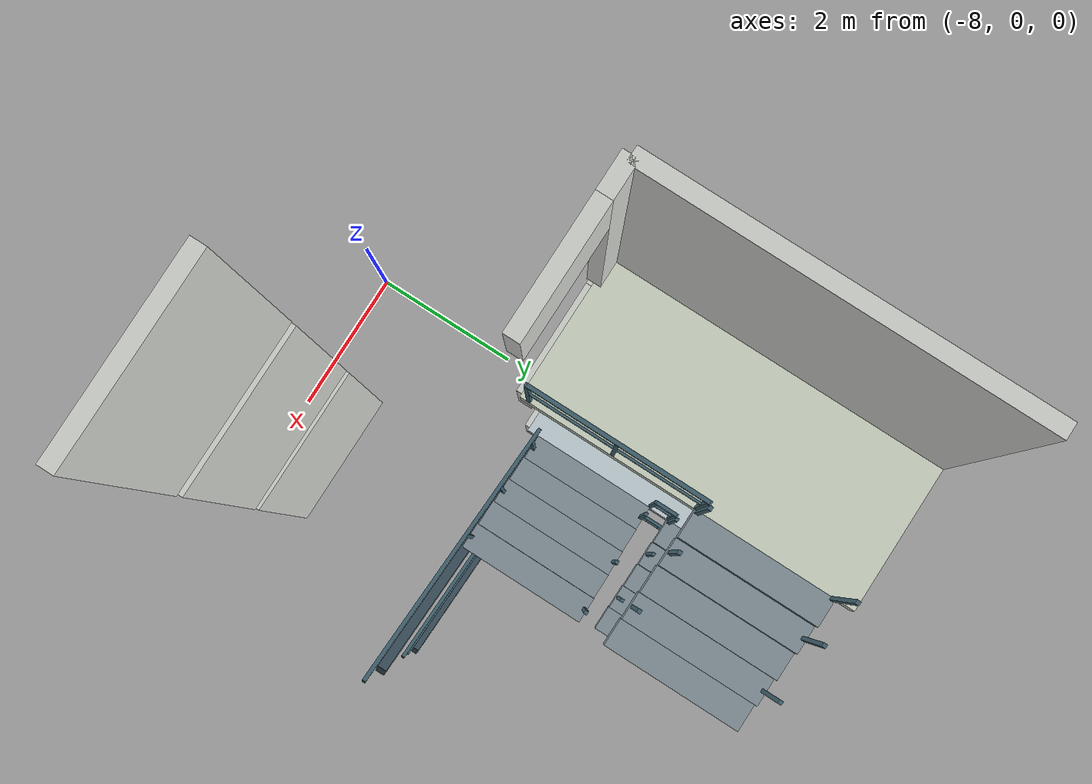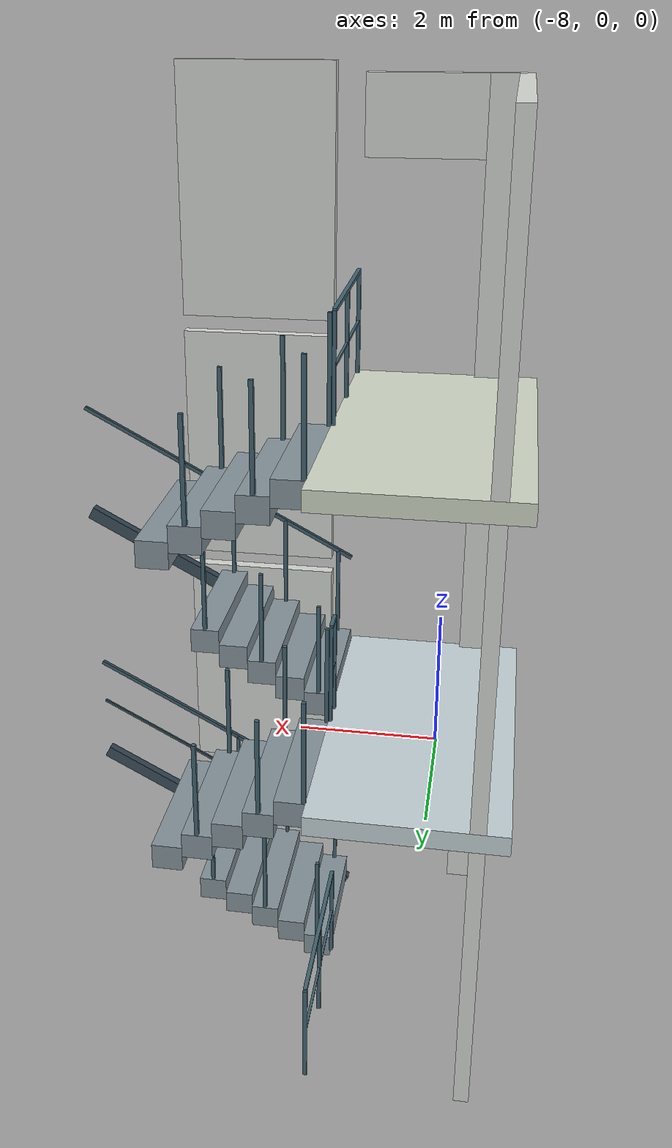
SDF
<sdf version="1.6">
 <world name="three_floor">
  <model name="f1_wall_023">
   <static>true</static>
   <pose>-5.6 0.8 1.5 0 0 0</pose>
   <link name="f1_wall_023_link">
    <collision name="f1_wall_023_collision"><geometry><box><size>1.9 0.15 3</size></box></geometry></collision>
    <visual name="f1_wall_023_visual">
     <geometry><box><size>1.9 0.15 3</size></box></geometry>
     <material><ambient>.84 .85 .83 1</ambient><diffuse>.84 .85 .83 1</diffuse></material>
    </visual>
   </link>
  </model>
  <model name="f1_wall_028">
   <static>true</static>
   <pose>-8.7 4.8 1.5 0 0 0</pose>
   <link name="f1_wall_028_link">
    <collision name="f1_wall_028_collision"><geometry><box><size>0.15 3.6 3</size></box></geometry></collision>
    <visual name="f1_wall_028_visual">
     <geometry><box><size>0.15 3.6 3</size></box></geometry>
     <material><ambient>.84 .85 .83 1</ambient><diffuse>.84 .85 .83 1</diffuse></material>
    </visual>
   </link>
  </model>
  <model name="f1_wall_031">
   <static>true</static>
   <pose>-8.525 3 1.5 0 0 0</pose>
   <link name="f1_wall_031_link">
    <collision name="f1_wall_031_collision"><geometry><box><size>0.35 0.15 3</size></box></geometry></collision>
    <visual name="f1_wall_031_visual">
     <geometry><box><size>0.35 0.15 3</size></box></geometry>
     <material><ambient>.84 .85 .83 1</ambient><diffuse>.84 .85 .83 1</diffuse></material>
    </visual>
   </link>
  </model>
  <model name="f1_lintel_stair">
   <static>true</static>
   <pose>-7.75 3 2.6 0 0 0</pose>
   <link name="f1_lintel_stair_link">
    <collision name="f1_lintel_stair_collision">
     <geometry><box><size>1.2 0.15 0.8</size></box></geometry>
    </collision>
    <visual name="f1_lintel_stair_visual">
     <geometry><box><size>1.2 0.15 0.8</size></box></geometry>
     <material><ambient>.84 .85 .83 1</ambient><diffuse>.84 .85 .83 1</diffuse></material>
    </visual>
   </link>
  </model>
  <model name="f2_slab_02">
   <static>true</static>
   <pose>-8.05 4.8 3.1 0 0 0</pose>
   <link name="f2_slab_02_link">
    <collision name="f2_slab_02_collision"><geometry><box><size>1.9 3.6 0.2</size></box></geometry></collision>
    <visual name="f2_slab_02_visual">
     <geometry><box><size>1.9 3.6 0.2</size></box></geometry>
     <material><ambient>0.77 0.83 0.85 1</ambient><diffuse>0.77 0.83 0.85 1</diffuse></material>
    </visual>
   </link>
  </model>
  <model name="f2_wall_023">
   <static>true</static>
   <pose>-5.6 0.8 4.7 0 0 0</pose>
   <link name="f2_wall_023_link">
    <collision name="f2_wall_023_collision"><geometry><box><size>1.9 0.15 3</size></box></geometry></collision>
    <visual name="f2_wall_023_visual">
     <geometry><box><size>1.9 0.15 3</size></box></geometry>
     <material><ambient>.84 .85 .83 1</ambient><diffuse>.84 .85 .83 1</diffuse></material>
    </visual>
   </link>
  </model>
  <model name="f2_wall_028">
   <static>true</static>
   <pose>-8.7 4.8 4.7 0 0 0</pose>
   <link name="f2_wall_028_link">
    <collision name="f2_wall_028_collision"><geometry><box><size>0.15 3.6 3</size></box></geometry></collision>
    <visual name="f2_wall_028_visual">
     <geometry><box><size>0.15 3.6 3</size></box></geometry>
     <material><ambient>.84 .85 .83 1</ambient><diffuse>.84 .85 .83 1</diffuse></material>
    </visual>
   </link>
  </model>
  <model name="f2_wall_031">
   <static>true</static>
   <pose>-8.525 3 4.7 0 0 0</pose>
   <link name="f2_wall_031_link">
    <collision name="f2_wall_031_collision"><geometry><box><size>0.35 0.15 3</size></box></geometry></collision>
    <visual name="f2_wall_031_visual">
     <geometry><box><size>0.35 0.15 3</size></box></geometry>
     <material><ambient>.84 .85 .83 1</ambient><diffuse>.84 .85 .83 1</diffuse></material>
    </visual>
   </link>
  </model>
  <model name="f2_lintel_stair">
   <static>true</static>
   <pose>-7.75 3 5.8 0 0 0</pose>
   <link name="f2_lintel_stair_link">
    <collision name="f2_lintel_stair_collision">
     <geometry><box><size>1.2 0.15 0.8</size></box></geometry>
    </collision>
    <visual name="f2_lintel_stair_visual">
     <geometry><box><size>1.2 0.15 0.8</size></box></geometry>
     <material><ambient>.84 .85 .83 1</ambient><diffuse>.84 .85 .83 1</diffuse></material>
    </visual>
   </link>
  </model>
  <model name="f3_slab_02">
   <static>true</static>
   <pose>-8.05 4.8 6.3 0 0 0</pose>
   <link name="f3_slab_02_link">
    <collision name="f3_slab_02_collision"><geometry><box><size>1.9 3.6 0.2</size></box></geometry></collision>
    <visual name="f3_slab_02_visual">
     <geometry><box><size>1.9 3.6 0.2</size></box></geometry>
     <material><ambient>0.82 0.85 0.78 1</ambient><diffuse>0.82 0.85 0.78 1</diffuse></material>
    </visual>
   </link>
  </model>
  <model name="f3_wall_023">
   <static>true</static>
   <pose>-5.6 0.8 7.9 0 0 0</pose>
   <link name="f3_wall_023_link">
    <collision name="f3_wall_023_collision"><geometry><box><size>1.9 0.15 3</size></box></geometry></collision>
    <visual name="f3_wall_023_visual">
     <geometry><box><size>1.9 0.15 3</size></box></geometry>
     <material><ambient>.84 .85 .83 1</ambient><diffuse>.84 .85 .83 1</diffuse></material>
    </visual>
   </link>
  </model>
  <model name="f3_wall_028">
   <static>true</static>
   <pose>-8.7 4.8 7.9 0 0 0</pose>
   <link name="f3_wall_028_link">
    <collision name="f3_wall_028_collision"><geometry><box><size>0.15 3.6 3</size></box></geometry></collision>
    <visual name="f3_wall_028_visual">
     <geometry><box><size>0.15 3.6 3</size></box></geometry>
     <material><ambient>.84 .85 .83 1</ambient><diffuse>.84 .85 .83 1</diffuse></material>
    </visual>
   </link>
  </model>
  <model name="f3_wall_031">
   <static>true</static>
   <pose>-8.525 3 7.9 0 0 0</pose>
   <link name="f3_wall_031_link">
    <collision name="f3_wall_031_collision"><geometry><box><size>0.35 0.15 3</size></box></geometry></collision>
    <visual name="f3_wall_031_visual">
     <geometry><box><size>0.35 0.15 3</size></box></geometry>
     <material><ambient>.84 .85 .83 1</ambient><diffuse>.84 .85 .83 1</diffuse></material>
    </visual>
   </link>
  </model>
  <model name="f3_lintel_stair">
   <static>true</static>
   <pose>-7.75 3 9 0 0 0</pose>
   <link name="f3_lintel_stair_link">
    <collision name="f3_lintel_stair_collision">
     <geometry><box><size>1.2 0.15 0.8</size></box></geometry>
    </collision>
    <visual name="f3_lintel_stair_visual">
     <geometry><box><size>1.2 0.15 0.8</size></box></geometry>
     <material><ambient>.84 .85 .83 1</ambient><diffuse>.84 .85 .83 1</diffuse></material>
    </visual>
   </link>
  </model>
  <model name="f1_stair_south_tread_01">
   <static>true</static>
   <pose>-6.95 3.9 0.03 0 0 0</pose>
   <link name="f1_stair_south_tread_01_link">
    <collision name="f1_stair_south_tread_01_collision">
     <geometry><box><size>0.3 1.5 0.26</size></box></geometry>
     <surface><friction><ode><mu>1.0</mu><mu2>1.0</mu2></ode></friction></surface>
    </collision>
    <visual name="f1_stair_south_tread_01_visual">
     <geometry><box><size>0.3 1.5 0.26</size></box></geometry>
     <material>
      <ambient>0.52 0.58 0.61 1</ambient>
      <diffuse>0.52 0.58 0.61 1</diffuse>
      <specular>0.04 0.04 0.04 1</specular>
     </material>
    </visual>
   </link>
  </model>
  <model name="f1_stair_south_tread_02">
   <static>true</static>
   <pose>-6.65 3.9 0.19 0 0 0</pose>
   <link name="f1_stair_south_tread_02_link">
    <collision name="f1_stair_south_tread_02_collision">
     <geometry><box><size>0.3 1.5 0.26</size></box></geometry>
     <surface><friction><ode><mu>1.0</mu><mu2>1.0</mu2></ode></friction></surface>
    </collision>
    <visual name="f1_stair_south_tread_02_visual">
     <geometry><box><size>0.3 1.5 0.26</size></box></geometry>
     <material>
      <ambient>0.52 0.58 0.61 1</ambient>
      <diffuse>0.52 0.58 0.61 1</diffuse>
      <specular>0.04 0.04 0.04 1</specular>
     </material>
    </visual>
   </link>
  </model>
  <model name="f1_stair_south_tread_03">
   <static>true</static>
   <pose>-6.35 3.9 0.35 0 0 0</pose>
   <link name="f1_stair_south_tread_03_link">
    <collision name="f1_stair_south_tread_03_collision">
     <geometry><box><size>0.3 1.5 0.26</size></box></geometry>
     <surface><friction><ode><mu>1.0</mu><mu2>1.0</mu2></ode></friction></surface>
    </collision>
    <visual name="f1_stair_south_tread_03_visual">
     <geometry><box><size>0.3 1.5 0.26</size></box></geometry>
     <material>
      <ambient>0.52 0.58 0.61 1</ambient>
      <diffuse>0.52 0.58 0.61 1</diffuse>
      <specular>0.04 0.04 0.04 1</specular>
     </material>
    </visual>
   </link>
  </model>
  <model name="f1_stair_south_tread_04">
   <static>true</static>
   <pose>-6.05 3.9 0.51 0 0 0</pose>
   <link name="f1_stair_south_tread_04_link">
    <collision name="f1_stair_south_tread_04_collision">
     <geometry><box><size>0.3 1.5 0.26</size></box></geometry>
     <surface><friction><ode><mu>1.0</mu><mu2>1.0</mu2></ode></friction></surface>
    </collision>
    <visual name="f1_stair_south_tread_04_visual">
     <geometry><box><size>0.3 1.5 0.26</size></box></geometry>
     <material>
      <ambient>0.52 0.58 0.61 1</ambient>
      <diffuse>0.52 0.58 0.61 1</diffuse>
      <specular>0.04 0.04 0.04 1</specular>
     </material>
    </visual>
   </link>
  </model>
  <model name="f1_stair_south_tread_05">
   <static>true</static>
   <pose>-5.75 3.9 0.67 0 0 0</pose>
   <link name="f1_stair_south_tread_05_link">
    <collision name="f1_stair_south_tread_05_collision">
     <geometry><box><size>0.3 1.5 0.26</size></box></geometry>
     <surface><friction><ode><mu>1.0</mu><mu2>1.0</mu2></ode></friction></surface>
    </collision>
    <visual name="f1_stair_south_tread_05_visual">
     <geometry><box><size>0.3 1.5 0.26</size></box></geometry>
     <material>
      <ambient>0.52 0.58 0.61 1</ambient>
      <diffuse>0.52 0.58 0.61 1</diffuse>
      <specular>0.04 0.04 0.04 1</specular>
     </material>
    </visual>
   </link>
  </model>
  <model name="f1_stair_south_outer_stringer">
   <static>true</static>
   <pose>-5.6 3.18 0.64 0 -0.489957326 0</pose>
   <link name="f1_stair_south_outer_stringer_link">
    <collision name="f1_stair_south_outer_stringer_collision">
     <geometry><box><size>3.4 0.1 0.14</size></box></geometry>
    </collision>
    <visual name="f1_stair_south_outer_stringer_visual">
     <geometry><box><size>3.4 0.1 0.14</size></box></geometry>
     <material>
      <ambient>0.23 0.31 0.36 1</ambient>
      <diffuse>0.23 0.31 0.36 1</diffuse>
      <specular>0.04 0.04 0.04 1</specular>
     </material>
    </visual>
   </link>
  </model>
  <model name="f1_stair_south_outer_handrail">
   <static>true</static>
   <pose>-5.6 3.18 1.88 0 -0.489957326 0</pose>
   <link name="f1_stair_south_outer_handrail_link">
    <collision name="f1_stair_south_outer_handrail_collision">
     <geometry><box><size>3.4 0.04 0.04</size></box></geometry>
    </collision>
    <visual name="f1_stair_south_outer_handrail_visual">
     <geometry><box><size>3.4 0.04 0.04</size></box></geometry>
     <material>
      <ambient>0.26 0.39 0.44 1</ambient>
      <diffuse>0.26 0.39 0.44 1</diffuse>
      <specular>0.04 0.04 0.04 1</specular>
     </material>
    </visual>
   </link>
  </model>
  <model name="f1_stair_south_outer_midrail">
   <static>true</static>
   <pose>-5.6 3.18 1.35 0 -0.489957326 0</pose>
   <link name="f1_stair_south_outer_midrail_link">
    <collision name="f1_stair_south_outer_midrail_collision">
     <geometry><box><size>3.4 0.025 0.025</size></box></geometry>
    </collision>
    <visual name="f1_stair_south_outer_midrail_visual">
     <geometry><box><size>3.4 0.025 0.025</size></box></geometry>
     <material>
      <ambient>0.26 0.39 0.44 1</ambient>
      <diffuse>0.26 0.39 0.44 1</diffuse>
      <specular>0.04 0.04 0.04 1</specular>
     </material>
    </visual>
   </link>
  </model>
  <model name="f1_stair_south_outer_post_00">
   <static>true</static>
   <pose>-6.95 3.18 0.66 0 0 0</pose>
   <link name="f1_stair_south_outer_post_00_link">
    <collision name="f1_stair_south_outer_post_00_collision">
     <geometry><box><size>0.04 0.04 1</size></box></geometry>
    </collision>
    <visual name="f1_stair_south_outer_post_00_visual">
     <geometry><box><size>0.04 0.04 1</size></box></geometry>
     <material>
      <ambient>0.26 0.39 0.44 1</ambient>
      <diffuse>0.26 0.39 0.44 1</diffuse>
      <specular>0.04 0.04 0.04 1</specular>
     </material>
    </visual>
   </link>
  </model>
  <model name="f1_stair_south_outer_post_01">
   <static>true</static>
   <pose>-6.35 3.18 0.98 0 0 0</pose>
   <link name="f1_stair_south_outer_post_01_link">
    <collision name="f1_stair_south_outer_post_01_collision">
     <geometry><box><size>0.04 0.04 1</size></box></geometry>
    </collision>
    <visual name="f1_stair_south_outer_post_01_visual">
     <geometry><box><size>0.04 0.04 1</size></box></geometry>
     <material>
      <ambient>0.26 0.39 0.44 1</ambient>
      <diffuse>0.26 0.39 0.44 1</diffuse>
      <specular>0.04 0.04 0.04 1</specular>
     </material>
    </visual>
   </link>
  </model>
  <model name="f1_stair_south_outer_post_02">
   <static>true</static>
   <pose>-5.75 3.18 1.3 0 0 0</pose>
   <link name="f1_stair_south_outer_post_02_link">
    <collision name="f1_stair_south_outer_post_02_collision">
     <geometry><box><size>0.04 0.04 1</size></box></geometry>
    </collision>
    <visual name="f1_stair_south_outer_post_02_visual">
     <geometry><box><size>0.04 0.04 1</size></box></geometry>
     <material>
      <ambient>0.26 0.39 0.44 1</ambient>
      <diffuse>0.26 0.39 0.44 1</diffuse>
      <specular>0.04 0.04 0.04 1</specular>
     </material>
    </visual>
   </link>
  </model>
  <model name="f1_stair_south_inner_post_00">
   <static>true</static>
   <pose>-6.95 4.62 0.66 0 0 0</pose>
   <link name="f1_stair_south_inner_post_00_link">
    <collision name="f1_stair_south_inner_post_00_collision">
     <geometry><box><size>0.04 0.04 1</size></box></geometry>
    </collision>
    <visual name="f1_stair_south_inner_post_00_visual">
     <geometry><box><size>0.04 0.04 1</size></box></geometry>
     <material>
      <ambient>0.26 0.39 0.44 1</ambient>
      <diffuse>0.26 0.39 0.44 1</diffuse>
      <specular>0.04 0.04 0.04 1</specular>
     </material>
    </visual>
   </link>
  </model>
  <model name="f1_stair_south_inner_post_01">
   <static>true</static>
   <pose>-6.35 4.62 0.98 0 0 0</pose>
   <link name="f1_stair_south_inner_post_01_link">
    <collision name="f1_stair_south_inner_post_01_collision">
     <geometry><box><size>0.04 0.04 1</size></box></geometry>
    </collision>
    <visual name="f1_stair_south_inner_post_01_visual">
     <geometry><box><size>0.04 0.04 1</size></box></geometry>
     <material>
      <ambient>0.26 0.39 0.44 1</ambient>
      <diffuse>0.26 0.39 0.44 1</diffuse>
      <specular>0.04 0.04 0.04 1</specular>
     </material>
    </visual>
   </link>
  </model>
  <model name="f1_stair_south_inner_post_02">
   <static>true</static>
   <pose>-5.75 4.62 1.3 0 0 0</pose>
   <link name="f1_stair_south_inner_post_02_link">
    <collision name="f1_stair_south_inner_post_02_collision">
     <geometry><box><size>0.04 0.04 1</size></box></geometry>
    </collision>
    <visual name="f1_stair_south_inner_post_02_visual">
     <geometry><box><size>0.04 0.04 1</size></box></geometry>
     <material>
      <ambient>0.26 0.39 0.44 1</ambient>
      <diffuse>0.26 0.39 0.44 1</diffuse>
      <specular>0.04 0.04 0.04 1</specular>
     </material>
    </visual>
   </link>
  </model>
  <model name="f1_stair_north_tread_06">
   <static>true</static>
   <pose>-5.75 5.65 2.43 0 0 0</pose>
   <link name="f1_stair_north_tread_06_link">
    <collision name="f1_stair_north_tread_06_collision">
     <geometry><box><size>0.3 1.5 0.26</size></box></geometry>
     <surface><friction><ode><mu>1.0</mu><mu2>1.0</mu2></ode></friction></surface>
    </collision>
    <visual name="f1_stair_north_tread_06_visual">
     <geometry><box><size>0.3 1.5 0.26</size></box></geometry>
     <material>
      <ambient>0.52 0.58 0.61 1</ambient>
      <diffuse>0.52 0.58 0.61 1</diffuse>
      <specular>0.04 0.04 0.04 1</specular>
     </material>
    </visual>
   </link>
  </model>
  <model name="f1_stair_north_tread_07">
   <static>true</static>
   <pose>-6.05 5.65 2.59 0 0 0</pose>
   <link name="f1_stair_north_tread_07_link">
    <collision name="f1_stair_north_tread_07_collision">
     <geometry><box><size>0.3 1.5 0.26</size></box></geometry>
     <surface><friction><ode><mu>1.0</mu><mu2>1.0</mu2></ode></friction></surface>
    </collision>
    <visual name="f1_stair_north_tread_07_visual">
     <geometry><box><size>0.3 1.5 0.26</size></box></geometry>
     <material>
      <ambient>0.52 0.58 0.61 1</ambient>
      <diffuse>0.52 0.58 0.61 1</diffuse>
      <specular>0.04 0.04 0.04 1</specular>
     </material>
    </visual>
   </link>
  </model>
  <model name="f1_stair_north_tread_08">
   <static>true</static>
   <pose>-6.35 5.65 2.75 0 0 0</pose>
   <link name="f1_stair_north_tread_08_link">
    <collision name="f1_stair_north_tread_08_collision">
     <geometry><box><size>0.3 1.5 0.26</size></box></geometry>
     <surface><friction><ode><mu>1.0</mu><mu2>1.0</mu2></ode></friction></surface>
    </collision>
    <visual name="f1_stair_north_tread_08_visual">
     <geometry><box><size>0.3 1.5 0.26</size></box></geometry>
     <material>
      <ambient>0.52 0.58 0.61 1</ambient>
      <diffuse>0.52 0.58 0.61 1</diffuse>
      <specular>0.04 0.04 0.04 1</specular>
     </material>
    </visual>
   </link>
  </model>
  <model name="f1_stair_north_tread_09">
   <static>true</static>
   <pose>-6.65 5.65 2.91 0 0 0</pose>
   <link name="f1_stair_north_tread_09_link">
    <collision name="f1_stair_north_tread_09_collision">
     <geometry><box><size>0.3 1.5 0.26</size></box></geometry>
     <surface><friction><ode><mu>1.0</mu><mu2>1.0</mu2></ode></friction></surface>
    </collision>
    <visual name="f1_stair_north_tread_09_visual">
     <geometry><box><size>0.3 1.5 0.26</size></box></geometry>
     <material>
      <ambient>0.52 0.58 0.61 1</ambient>
      <diffuse>0.52 0.58 0.61 1</diffuse>
      <specular>0.04 0.04 0.04 1</specular>
     </material>
    </visual>
   </link>
  </model>
  <model name="f1_stair_north_tread_10">
   <static>true</static>
   <pose>-6.95 5.65 3.07 0 0 0</pose>
   <link name="f1_stair_north_tread_10_link">
    <collision name="f1_stair_north_tread_10_collision">
     <geometry><box><size>0.3 1.5 0.26</size></box></geometry>
     <surface><friction><ode><mu>1.0</mu><mu2>1.0</mu2></ode></friction></surface>
    </collision>
    <visual name="f1_stair_north_tread_10_visual">
     <geometry><box><size>0.3 1.5 0.26</size></box></geometry>
     <material>
      <ambient>0.52 0.58 0.61 1</ambient>
      <diffuse>0.52 0.58 0.61 1</diffuse>
      <specular>0.04 0.04 0.04 1</specular>
     </material>
    </visual>
   </link>
  </model>
  <model name="f1_stair_north_outer_post_03">
   <static>true</static>
   <pose>-6.05 6.37 3.22 0 0 0</pose>
   <link name="f1_stair_north_outer_post_03_link">
    <collision name="f1_stair_north_outer_post_03_collision">
     <geometry><box><size>0.04 0.04 1</size></box></geometry>
    </collision>
    <visual name="f1_stair_north_outer_post_03_visual">
     <geometry><box><size>0.04 0.04 1</size></box></geometry>
     <material>
      <ambient>0.26 0.39 0.44 1</ambient>
      <diffuse>0.26 0.39 0.44 1</diffuse>
      <specular>0.04 0.04 0.04 1</specular>
     </material>
    </visual>
   </link>
  </model>
  <model name="f1_stair_north_outer_post_04">
   <static>true</static>
   <pose>-6.65 6.37 3.54 0 0 0</pose>
   <link name="f1_stair_north_outer_post_04_link">
    <collision name="f1_stair_north_outer_post_04_collision">
     <geometry><box><size>0.04 0.04 1</size></box></geometry>
    </collision>
    <visual name="f1_stair_north_outer_post_04_visual">
     <geometry><box><size>0.04 0.04 1</size></box></geometry>
     <material>
      <ambient>0.26 0.39 0.44 1</ambient>
      <diffuse>0.26 0.39 0.44 1</diffuse>
      <specular>0.04 0.04 0.04 1</specular>
     </material>
    </visual>
   </link>
  </model>
  <model name="f1_stair_north_outer_post_05">
   <static>true</static>
   <pose>-7.085 6.37 3.736 0 0 0</pose>
   <link name="f1_stair_north_outer_post_05_link">
    <collision name="f1_stair_north_outer_post_05_collision">
     <geometry><box><size>0.04 0.04 1.072</size></box></geometry>
    </collision>
    <visual name="f1_stair_north_outer_post_05_visual">
     <geometry><box><size>0.04 0.04 1.072</size></box></geometry>
     <material>
      <ambient>0.26 0.39 0.44 1</ambient>
      <diffuse>0.26 0.39 0.44 1</diffuse>
      <specular>0.04 0.04 0.04 1</specular>
     </material>
    </visual>
   </link>
  </model>
  <model name="f1_stair_north_inner_post_03">
   <static>true</static>
   <pose>-6.05 4.93 3.22 0 0 0</pose>
   <link name="f1_stair_north_inner_post_03_link">
    <collision name="f1_stair_north_inner_post_03_collision">
     <geometry><box><size>0.04 0.04 1</size></box></geometry>
    </collision>
    <visual name="f1_stair_north_inner_post_03_visual">
     <geometry><box><size>0.04 0.04 1</size></box></geometry>
     <material>
      <ambient>0.26 0.39 0.44 1</ambient>
      <diffuse>0.26 0.39 0.44 1</diffuse>
      <specular>0.04 0.04 0.04 1</specular>
     </material>
    </visual>
   </link>
  </model>
  <model name="f1_stair_north_inner_post_04">
   <static>true</static>
   <pose>-6.65 4.93 3.54 0 0 0</pose>
   <link name="f1_stair_north_inner_post_04_link">
    <collision name="f1_stair_north_inner_post_04_collision">
     <geometry><box><size>0.04 0.04 1</size></box></geometry>
    </collision>
    <visual name="f1_stair_north_inner_post_04_visual">
     <geometry><box><size>0.04 0.04 1</size></box></geometry>
     <material>
      <ambient>0.26 0.39 0.44 1</ambient>
      <diffuse>0.26 0.39 0.44 1</diffuse>
      <specular>0.04 0.04 0.04 1</specular>
     </material>
    </visual>
   </link>
  </model>
  <model name="f1_stair_north_inner_post_05">
   <static>true</static>
   <pose>-7.085 4.93 3.736 0 0 0</pose>
   <link name="f1_stair_north_inner_post_05_link">
    <collision name="f1_stair_north_inner_post_05_collision">
     <geometry><box><size>0.04 0.04 1.072</size></box></geometry>
    </collision>
    <visual name="f1_stair_north_inner_post_05_visual">
     <geometry><box><size>0.04 0.04 1.072</size></box></geometry>
     <material>
      <ambient>0.26 0.39 0.44 1</ambient>
      <diffuse>0.26 0.39 0.44 1</diffuse>
      <specular>0.04 0.04 0.04 1</specular>
     </material>
    </visual>
   </link>
  </model>
  <model name="f2_stair_south_tread_01">
   <static>true</static>
   <pose>-6.95 3.9 3.23 0 0 0</pose>
   <link name="f2_stair_south_tread_01_link">
    <collision name="f2_stair_south_tread_01_collision">
     <geometry><box><size>0.3 1.5 0.26</size></box></geometry>
     <surface><friction><ode><mu>1.0</mu><mu2>1.0</mu2></ode></friction></surface>
    </collision>
    <visual name="f2_stair_south_tread_01_visual">
     <geometry><box><size>0.3 1.5 0.26</size></box></geometry>
     <material>
      <ambient>0.52 0.58 0.61 1</ambient>
      <diffuse>0.52 0.58 0.61 1</diffuse>
      <specular>0.04 0.04 0.04 1</specular>
     </material>
    </visual>
   </link>
  </model>
  <model name="f2_stair_south_tread_02">
   <static>true</static>
   <pose>-6.65 3.9 3.39 0 0 0</pose>
   <link name="f2_stair_south_tread_02_link">
    <collision name="f2_stair_south_tread_02_collision">
     <geometry><box><size>0.3 1.5 0.26</size></box></geometry>
     <surface><friction><ode><mu>1.0</mu><mu2>1.0</mu2></ode></friction></surface>
    </collision>
    <visual name="f2_stair_south_tread_02_visual">
     <geometry><box><size>0.3 1.5 0.26</size></box></geometry>
     <material>
      <ambient>0.52 0.58 0.61 1</ambient>
      <diffuse>0.52 0.58 0.61 1</diffuse>
      <specular>0.04 0.04 0.04 1</specular>
     </material>
    </visual>
   </link>
  </model>
  <model name="f2_stair_south_tread_03">
   <static>true</static>
   <pose>-6.35 3.9 3.55 0 0 0</pose>
   <link name="f2_stair_south_tread_03_link">
    <collision name="f2_stair_south_tread_03_collision">
     <geometry><box><size>0.3 1.5 0.26</size></box></geometry>
     <surface><friction><ode><mu>1.0</mu><mu2>1.0</mu2></ode></friction></surface>
    </collision>
    <visual name="f2_stair_south_tread_03_visual">
     <geometry><box><size>0.3 1.5 0.26</size></box></geometry>
     <material>
      <ambient>0.52 0.58 0.61 1</ambient>
      <diffuse>0.52 0.58 0.61 1</diffuse>
      <specular>0.04 0.04 0.04 1</specular>
     </material>
    </visual>
   </link>
  </model>
  <model name="f2_stair_south_tread_04">
   <static>true</static>
   <pose>-6.05 3.9 3.71 0 0 0</pose>
   <link name="f2_stair_south_tread_04_link">
    <collision name="f2_stair_south_tread_04_collision">
     <geometry><box><size>0.3 1.5 0.26</size></box></geometry>
     <surface><friction><ode><mu>1.0</mu><mu2>1.0</mu2></ode></friction></surface>
    </collision>
    <visual name="f2_stair_south_tread_04_visual">
     <geometry><box><size>0.3 1.5 0.26</size></box></geometry>
     <material>
      <ambient>0.52 0.58 0.61 1</ambient>
      <diffuse>0.52 0.58 0.61 1</diffuse>
      <specular>0.04 0.04 0.04 1</specular>
     </material>
    </visual>
   </link>
  </model>
  <model name="f2_stair_south_tread_05">
   <static>true</static>
   <pose>-5.75 3.9 3.87 0 0 0</pose>
   <link name="f2_stair_south_tread_05_link">
    <collision name="f2_stair_south_tread_05_collision">
     <geometry><box><size>0.3 1.5 0.26</size></box></geometry>
     <surface><friction><ode><mu>1.0</mu><mu2>1.0</mu2></ode></friction></surface>
    </collision>
    <visual name="f2_stair_south_tread_05_visual">
     <geometry><box><size>0.3 1.5 0.26</size></box></geometry>
     <material>
      <ambient>0.52 0.58 0.61 1</ambient>
      <diffuse>0.52 0.58 0.61 1</diffuse>
      <specular>0.04 0.04 0.04 1</specular>
     </material>
    </visual>
   </link>
  </model>
  <model name="f2_stair_south_outer_stringer">
   <static>true</static>
   <pose>-5.6 3.18 3.84 0 -0.489957326 0</pose>
   <link name="f2_stair_south_outer_stringer_link">
    <collision name="f2_stair_south_outer_stringer_collision">
     <geometry><box><size>3.4 0.1 0.14</size></box></geometry>
    </collision>
    <visual name="f2_stair_south_outer_stringer_visual">
     <geometry><box><size>3.4 0.1 0.14</size></box></geometry>
     <material>
      <ambient>0.23 0.31 0.36 1</ambient>
      <diffuse>0.23 0.31 0.36 1</diffuse>
      <specular>0.04 0.04 0.04 1</specular>
     </material>
    </visual>
   </link>
  </model>
  <model name="f2_stair_south_outer_handrail">
   <static>true</static>
   <pose>-5.6 3.18 5.08 0 -0.489957326 0</pose>
   <link name="f2_stair_south_outer_handrail_link">
    <collision name="f2_stair_south_outer_handrail_collision">
     <geometry><box><size>3.4 0.04 0.04</size></box></geometry>
    </collision>
    <visual name="f2_stair_south_outer_handrail_visual">
     <geometry><box><size>3.4 0.04 0.04</size></box></geometry>
     <material>
      <ambient>0.26 0.39 0.44 1</ambient>
      <diffuse>0.26 0.39 0.44 1</diffuse>
      <specular>0.04 0.04 0.04 1</specular>
     </material>
    </visual>
   </link>
  </model>
  <model name="f2_stair_south_outer_post_00">
   <static>true</static>
   <pose>-6.95 3.18 3.86 0 0 0</pose>
   <link name="f2_stair_south_outer_post_00_link">
    <collision name="f2_stair_south_outer_post_00_collision">
     <geometry><box><size>0.04 0.04 1</size></box></geometry>
    </collision>
    <visual name="f2_stair_south_outer_post_00_visual">
     <geometry><box><size>0.04 0.04 1</size></box></geometry>
     <material>
      <ambient>0.26 0.39 0.44 1</ambient>
      <diffuse>0.26 0.39 0.44 1</diffuse>
      <specular>0.04 0.04 0.04 1</specular>
     </material>
    </visual>
   </link>
  </model>
  <model name="f2_stair_south_outer_post_01">
   <static>true</static>
   <pose>-6.35 3.18 4.18 0 0 0</pose>
   <link name="f2_stair_south_outer_post_01_link">
    <collision name="f2_stair_south_outer_post_01_collision">
     <geometry><box><size>0.04 0.04 1</size></box></geometry>
    </collision>
    <visual name="f2_stair_south_outer_post_01_visual">
     <geometry><box><size>0.04 0.04 1</size></box></geometry>
     <material>
      <ambient>0.26 0.39 0.44 1</ambient>
      <diffuse>0.26 0.39 0.44 1</diffuse>
      <specular>0.04 0.04 0.04 1</specular>
     </material>
    </visual>
   </link>
  </model>
  <model name="f2_stair_south_outer_post_02">
   <static>true</static>
   <pose>-5.75 3.18 4.5 0 0 0</pose>
   <link name="f2_stair_south_outer_post_02_link">
    <collision name="f2_stair_south_outer_post_02_collision">
     <geometry><box><size>0.04 0.04 1</size></box></geometry>
    </collision>
    <visual name="f2_stair_south_outer_post_02_visual">
     <geometry><box><size>0.04 0.04 1</size></box></geometry>
     <material>
      <ambient>0.26 0.39 0.44 1</ambient>
      <diffuse>0.26 0.39 0.44 1</diffuse>
      <specular>0.04 0.04 0.04 1</specular>
     </material>
    </visual>
   </link>
  </model>
  <model name="f2_stair_south_inner_post_00">
   <static>true</static>
   <pose>-6.95 4.62 3.86 0 0 0</pose>
   <link name="f2_stair_south_inner_post_00_link">
    <collision name="f2_stair_south_inner_post_00_collision">
     <geometry><box><size>0.04 0.04 1</size></box></geometry>
    </collision>
    <visual name="f2_stair_south_inner_post_00_visual">
     <geometry><box><size>0.04 0.04 1</size></box></geometry>
     <material>
      <ambient>0.26 0.39 0.44 1</ambient>
      <diffuse>0.26 0.39 0.44 1</diffuse>
      <specular>0.04 0.04 0.04 1</specular>
     </material>
    </visual>
   </link>
  </model>
  <model name="f2_stair_south_inner_post_01">
   <static>true</static>
   <pose>-6.35 4.62 4.18 0 0 0</pose>
   <link name="f2_stair_south_inner_post_01_link">
    <collision name="f2_stair_south_inner_post_01_collision">
     <geometry><box><size>0.04 0.04 1</size></box></geometry>
    </collision>
    <visual name="f2_stair_south_inner_post_01_visual">
     <geometry><box><size>0.04 0.04 1</size></box></geometry>
     <material>
      <ambient>0.26 0.39 0.44 1</ambient>
      <diffuse>0.26 0.39 0.44 1</diffuse>
      <specular>0.04 0.04 0.04 1</specular>
     </material>
    </visual>
   </link>
  </model>
  <model name="f2_stair_south_inner_post_02">
   <static>true</static>
   <pose>-5.75 4.62 4.5 0 0 0</pose>
   <link name="f2_stair_south_inner_post_02_link">
    <collision name="f2_stair_south_inner_post_02_collision">
     <geometry><box><size>0.04 0.04 1</size></box></geometry>
    </collision>
    <visual name="f2_stair_south_inner_post_02_visual">
     <geometry><box><size>0.04 0.04 1</size></box></geometry>
     <material>
      <ambient>0.26 0.39 0.44 1</ambient>
      <diffuse>0.26 0.39 0.44 1</diffuse>
      <specular>0.04 0.04 0.04 1</specular>
     </material>
    </visual>
   </link>
  </model>
  <model name="f2_stair_north_tread_06">
   <static>true</static>
   <pose>-5.75 5.65 5.63 0 0 0</pose>
   <link name="f2_stair_north_tread_06_link">
    <collision name="f2_stair_north_tread_06_collision">
     <geometry><box><size>0.3 1.5 0.26</size></box></geometry>
     <surface><friction><ode><mu>1.0</mu><mu2>1.0</mu2></ode></friction></surface>
    </collision>
    <visual name="f2_stair_north_tread_06_visual">
     <geometry><box><size>0.3 1.5 0.26</size></box></geometry>
     <material>
      <ambient>0.52 0.58 0.61 1</ambient>
      <diffuse>0.52 0.58 0.61 1</diffuse>
      <specular>0.04 0.04 0.04 1</specular>
     </material>
    </visual>
   </link>
  </model>
  <model name="f2_stair_north_tread_07">
   <static>true</static>
   <pose>-6.05 5.65 5.79 0 0 0</pose>
   <link name="f2_stair_north_tread_07_link">
    <collision name="f2_stair_north_tread_07_collision">
     <geometry><box><size>0.3 1.5 0.26</size></box></geometry>
     <surface><friction><ode><mu>1.0</mu><mu2>1.0</mu2></ode></friction></surface>
    </collision>
    <visual name="f2_stair_north_tread_07_visual">
     <geometry><box><size>0.3 1.5 0.26</size></box></geometry>
     <material>
      <ambient>0.52 0.58 0.61 1</ambient>
      <diffuse>0.52 0.58 0.61 1</diffuse>
      <specular>0.04 0.04 0.04 1</specular>
     </material>
    </visual>
   </link>
  </model>
  <model name="f2_stair_north_tread_08">
   <static>true</static>
   <pose>-6.35 5.65 5.95 0 0 0</pose>
   <link name="f2_stair_north_tread_08_link">
    <collision name="f2_stair_north_tread_08_collision">
     <geometry><box><size>0.3 1.5 0.26</size></box></geometry>
     <surface><friction><ode><mu>1.0</mu><mu2>1.0</mu2></ode></friction></surface>
    </collision>
    <visual name="f2_stair_north_tread_08_visual">
     <geometry><box><size>0.3 1.5 0.26</size></box></geometry>
     <material>
      <ambient>0.52 0.58 0.61 1</ambient>
      <diffuse>0.52 0.58 0.61 1</diffuse>
      <specular>0.04 0.04 0.04 1</specular>
     </material>
    </visual>
   </link>
  </model>
  <model name="f2_stair_north_tread_09">
   <static>true</static>
   <pose>-6.65 5.65 6.11 0 0 0</pose>
   <link name="f2_stair_north_tread_09_link">
    <collision name="f2_stair_north_tread_09_collision">
     <geometry><box><size>0.3 1.5 0.26</size></box></geometry>
     <surface><friction><ode><mu>1.0</mu><mu2>1.0</mu2></ode></friction></surface>
    </collision>
    <visual name="f2_stair_north_tread_09_visual">
     <geometry><box><size>0.3 1.5 0.26</size></box></geometry>
     <material>
      <ambient>0.52 0.58 0.61 1</ambient>
      <diffuse>0.52 0.58 0.61 1</diffuse>
      <specular>0.04 0.04 0.04 1</specular>
     </material>
    </visual>
   </link>
  </model>
  <model name="f2_stair_north_tread_10">
   <static>true</static>
   <pose>-6.95 5.65 6.27 0 0 0</pose>
   <link name="f2_stair_north_tread_10_link">
    <collision name="f2_stair_north_tread_10_collision">
     <geometry><box><size>0.3 1.5 0.26</size></box></geometry>
     <surface><friction><ode><mu>1.0</mu><mu2>1.0</mu2></ode></friction></surface>
    </collision>
    <visual name="f2_stair_north_tread_10_visual">
     <geometry><box><size>0.3 1.5 0.26</size></box></geometry>
     <material>
      <ambient>0.52 0.58 0.61 1</ambient>
      <diffuse>0.52 0.58 0.61 1</diffuse>
      <specular>0.04 0.04 0.04 1</specular>
     </material>
    </visual>
   </link>
  </model>
  <model name="f2_stair_north_outer_post_03">
   <static>true</static>
   <pose>-6.05 6.37 6.42 0 0 0</pose>
   <link name="f2_stair_north_outer_post_03_link">
    <collision name="f2_stair_north_outer_post_03_collision">
     <geometry><box><size>0.04 0.04 1</size></box></geometry>
    </collision>
    <visual name="f2_stair_north_outer_post_03_visual">
     <geometry><box><size>0.04 0.04 1</size></box></geometry>
     <material>
      <ambient>0.26 0.39 0.44 1</ambient>
      <diffuse>0.26 0.39 0.44 1</diffuse>
      <specular>0.04 0.04 0.04 1</specular>
     </material>
    </visual>
   </link>
  </model>
  <model name="f2_stair_north_outer_post_04">
   <static>true</static>
   <pose>-6.65 6.37 6.74 0 0 0</pose>
   <link name="f2_stair_north_outer_post_04_link">
    <collision name="f2_stair_north_outer_post_04_collision">
     <geometry><box><size>0.04 0.04 1</size></box></geometry>
    </collision>
    <visual name="f2_stair_north_outer_post_04_visual">
     <geometry><box><size>0.04 0.04 1</size></box></geometry>
     <material>
      <ambient>0.26 0.39 0.44 1</ambient>
      <diffuse>0.26 0.39 0.44 1</diffuse>
      <specular>0.04 0.04 0.04 1</specular>
     </material>
    </visual>
   </link>
  </model>
  <model name="f2_stair_north_outer_post_05">
   <static>true</static>
   <pose>-7.085 6.37 6.936 0 0 0</pose>
   <link name="f2_stair_north_outer_post_05_link">
    <collision name="f2_stair_north_outer_post_05_collision">
     <geometry><box><size>0.04 0.04 1.072</size></box></geometry>
    </collision>
    <visual name="f2_stair_north_outer_post_05_visual">
     <geometry><box><size>0.04 0.04 1.072</size></box></geometry>
     <material>
      <ambient>0.26 0.39 0.44 1</ambient>
      <diffuse>0.26 0.39 0.44 1</diffuse>
      <specular>0.04 0.04 0.04 1</specular>
     </material>
    </visual>
   </link>
  </model>
  <model name="f2_stair_north_inner_post_03">
   <static>true</static>
   <pose>-6.05 4.93 6.42 0 0 0</pose>
   <link name="f2_stair_north_inner_post_03_link">
    <collision name="f2_stair_north_inner_post_03_collision">
     <geometry><box><size>0.04 0.04 1</size></box></geometry>
    </collision>
    <visual name="f2_stair_north_inner_post_03_visual">
     <geometry><box><size>0.04 0.04 1</size></box></geometry>
     <material>
      <ambient>0.26 0.39 0.44 1</ambient>
      <diffuse>0.26 0.39 0.44 1</diffuse>
      <specular>0.04 0.04 0.04 1</specular>
     </material>
    </visual>
   </link>
  </model>
  <model name="f2_stair_north_inner_post_04">
   <static>true</static>
   <pose>-6.65 4.93 6.74 0 0 0</pose>
   <link name="f2_stair_north_inner_post_04_link">
    <collision name="f2_stair_north_inner_post_04_collision">
     <geometry><box><size>0.04 0.04 1</size></box></geometry>
    </collision>
    <visual name="f2_stair_north_inner_post_04_visual">
     <geometry><box><size>0.04 0.04 1</size></box></geometry>
     <material>
      <ambient>0.26 0.39 0.44 1</ambient>
      <diffuse>0.26 0.39 0.44 1</diffuse>
      <specular>0.04 0.04 0.04 1</specular>
     </material>
    </visual>
   </link>
  </model>
  <model name="f2_stair_north_inner_post_05">
   <static>true</static>
   <pose>-7.085 4.93 6.936 0 0 0</pose>
   <link name="f2_stair_north_inner_post_05_link">
    <collision name="f2_stair_north_inner_post_05_collision">
     <geometry><box><size>0.04 0.04 1.072</size></box></geometry>
    </collision>
    <visual name="f2_stair_north_inner_post_05_visual">
     <geometry><box><size>0.04 0.04 1.072</size></box></geometry>
     <material>
      <ambient>0.26 0.39 0.44 1</ambient>
      <diffuse>0.26 0.39 0.44 1</diffuse>
      <specular>0.04 0.04 0.04 1</specular>
     </material>
    </visual>
   </link>
  </model>
  <model name="f1_stair_landing_underflight_guard_top">
   <static>true</static>
   <pose>-7.12 5.5775 1.08 0 0 1.570796327</pose>
   <link name="f1_stair_landing_underflight_guard_top_link">
    <collision name="f1_stair_landing_underflight_guard_top_collision">
     <geometry><box><size>1.855 0.04 0.04</size></box></geometry>
    </collision>
    <visual name="f1_stair_landing_underflight_guard_top_visual">
     <geometry><box><size>1.855 0.04 0.04</size></box></geometry>
     <material>
      <ambient>0.26 0.39 0.44 1</ambient>
      <diffuse>0.26 0.39 0.44 1</diffuse>
      <specular>0.04 0.04 0.04 1</specular>
     </material>
    </visual>
   </link>
  </model>
  <model name="f1_stair_landing_underflight_guard_mid">
   <static>true</static>
   <pose>-7.12 5.5775 0.55 0 0 1.570796327</pose>
   <link name="f1_stair_landing_underflight_guard_mid_link">
    <collision name="f1_stair_landing_underflight_guard_mid_collision">
     <geometry><box><size>1.855 0.025 0.025</size></box></geometry>
    </collision>
    <visual name="f1_stair_landing_underflight_guard_mid_visual">
     <geometry><box><size>1.855 0.025 0.025</size></box></geometry>
     <material>
      <ambient>0.26 0.39 0.44 1</ambient>
      <diffuse>0.26 0.39 0.44 1</diffuse>
      <specular>0.04 0.04 0.04 1</specular>
     </material>
    </visual>
   </link>
  </model>
  <model name="f1_stair_landing_underflight_guard_post_00">
   <static>true</static>
   <pose>-7.12 4.65 0.54 0 0 0</pose>
   <link name="f1_stair_landing_underflight_guard_post_00_link">
    <collision name="f1_stair_landing_underflight_guard_post_00_collision">
     <geometry><box><size>0.04 0.04 1.08</size></box></geometry>
    </collision>
    <visual name="f1_stair_landing_underflight_guard_post_00_visual">
     <geometry><box><size>0.04 0.04 1.08</size></box></geometry>
     <material>
      <ambient>0.26 0.39 0.44 1</ambient>
      <diffuse>0.26 0.39 0.44 1</diffuse>
      <specular>0.04 0.04 0.04 1</specular>
     </material>
    </visual>
   </link>
  </model>
  <model name="f1_stair_landing_underflight_guard_post_01">
   <static>true</static>
   <pose>-7.12 5.5775 0.54 0 0 0</pose>
   <link name="f1_stair_landing_underflight_guard_post_01_link">
    <collision name="f1_stair_landing_underflight_guard_post_01_collision">
     <geometry><box><size>0.04 0.04 1.08</size></box></geometry>
    </collision>
    <visual name="f1_stair_landing_underflight_guard_post_01_visual">
     <geometry><box><size>0.04 0.04 1.08</size></box></geometry>
     <material>
      <ambient>0.26 0.39 0.44 1</ambient>
      <diffuse>0.26 0.39 0.44 1</diffuse>
      <specular>0.04 0.04 0.04 1</specular>
     </material>
    </visual>
   </link>
  </model>
  <model name="f1_stair_landing_underflight_guard_post_02">
   <static>true</static>
   <pose>-7.12 6.505 0.54 0 0 0</pose>
   <link name="f1_stair_landing_underflight_guard_post_02_link">
    <collision name="f1_stair_landing_underflight_guard_post_02_collision">
     <geometry><box><size>0.04 0.04 1.08</size></box></geometry>
    </collision>
    <visual name="f1_stair_landing_underflight_guard_post_02_visual">
     <geometry><box><size>0.04 0.04 1.08</size></box></geometry>
     <material>
      <ambient>0.26 0.39 0.44 1</ambient>
      <diffuse>0.26 0.39 0.44 1</diffuse>
      <specular>0.04 0.04 0.04 1</specular>
     </material>
    </visual>
   </link>
  </model>
  <model name="f2_stair_landing_central_gap_guard_top">
   <static>true</static>
   <pose>-7.12 4.775 4.28 0 0 1.570796327</pose>
   <link name="f2_stair_landing_central_gap_guard_top_link">
    <collision name="f2_stair_landing_central_gap_guard_top_collision">
     <geometry><box><size>0.25 0.04 0.04</size></box></geometry>
    </collision>
    <visual name="f2_stair_landing_central_gap_guard_top_visual">
     <geometry><box><size>0.25 0.04 0.04</size></box></geometry>
     <material>
      <ambient>0.26 0.39 0.44 1</ambient>
      <diffuse>0.26 0.39 0.44 1</diffuse>
      <specular>0.04 0.04 0.04 1</specular>
     </material>
    </visual>
   </link>
  </model>
  <model name="f2_stair_landing_central_gap_guard_mid">
   <static>true</static>
   <pose>-7.12 4.775 3.75 0 0 1.570796327</pose>
   <link name="f2_stair_landing_central_gap_guard_mid_link">
    <collision name="f2_stair_landing_central_gap_guard_mid_collision">
     <geometry><box><size>0.25 0.025 0.025</size></box></geometry>
    </collision>
    <visual name="f2_stair_landing_central_gap_guard_mid_visual">
     <geometry><box><size>0.25 0.025 0.025</size></box></geometry>
     <material>
      <ambient>0.26 0.39 0.44 1</ambient>
      <diffuse>0.26 0.39 0.44 1</diffuse>
      <specular>0.04 0.04 0.04 1</specular>
     </material>
    </visual>
   </link>
  </model>
  <model name="f2_stair_landing_central_gap_guard_post_00">
   <static>true</static>
   <pose>-7.12 4.65 3.74 0 0 0</pose>
   <link name="f2_stair_landing_central_gap_guard_post_00_link">
    <collision name="f2_stair_landing_central_gap_guard_post_00_collision">
     <geometry><box><size>0.04 0.04 1.08</size></box></geometry>
    </collision>
    <visual name="f2_stair_landing_central_gap_guard_post_00_visual">
     <geometry><box><size>0.04 0.04 1.08</size></box></geometry>
     <material>
      <ambient>0.26 0.39 0.44 1</ambient>
      <diffuse>0.26 0.39 0.44 1</diffuse>
      <specular>0.04 0.04 0.04 1</specular>
     </material>
    </visual>
   </link>
  </model>
  <model name="f2_stair_landing_central_gap_guard_post_01">
   <static>true</static>
   <pose>-7.12 4.9 3.74 0 0 0</pose>
   <link name="f2_stair_landing_central_gap_guard_post_01_link">
    <collision name="f2_stair_landing_central_gap_guard_post_01_collision">
     <geometry><box><size>0.04 0.04 1.08</size></box></geometry>
    </collision>
    <visual name="f2_stair_landing_central_gap_guard_post_01_visual">
     <geometry><box><size>0.04 0.04 1.08</size></box></geometry>
     <material>
      <ambient>0.26 0.39 0.44 1</ambient>
      <diffuse>0.26 0.39 0.44 1</diffuse>
      <specular>0.04 0.04 0.04 1</specular>
     </material>
    </visual>
   </link>
  </model>
  <model name="f3_stair_landing_no_upper_flight_guard_top">
   <static>true</static>
   <pose>-7.12 3.9975 7.48 0 0 1.570796327</pose>
   <link name="f3_stair_landing_no_upper_flight_guard_top_link">
    <collision name="f3_stair_landing_no_upper_flight_guard_top_collision">
     <geometry><box><size>1.805 0.04 0.04</size></box></geometry>
    </collision>
    <visual name="f3_stair_landing_no_upper_flight_guard_top_visual">
     <geometry><box><size>1.805 0.04 0.04</size></box></geometry>
     <material>
      <ambient>0.26 0.39 0.44 1</ambient>
      <diffuse>0.26 0.39 0.44 1</diffuse>
      <specular>0.04 0.04 0.04 1</specular>
     </material>
    </visual>
   </link>
  </model>
  <model name="f3_stair_landing_no_upper_flight_guard_mid">
   <static>true</static>
   <pose>-7.12 3.9975 6.95 0 0 1.570796327</pose>
   <link name="f3_stair_landing_no_upper_flight_guard_mid_link">
    <collision name="f3_stair_landing_no_upper_flight_guard_mid_collision">
     <geometry><box><size>1.805 0.025 0.025</size></box></geometry>
    </collision>
    <visual name="f3_stair_landing_no_upper_flight_guard_mid_visual">
     <geometry><box><size>1.805 0.025 0.025</size></box></geometry>
     <material>
      <ambient>0.26 0.39 0.44 1</ambient>
      <diffuse>0.26 0.39 0.44 1</diffuse>
      <specular>0.04 0.04 0.04 1</specular>
     </material>
    </visual>
   </link>
  </model>
  <model name="f3_stair_landing_no_upper_flight_guard_post_00">
   <static>true</static>
   <pose>-7.12 3.095 6.94 0 0 0</pose>
   <link name="f3_stair_landing_no_upper_flight_guard_post_00_link">
    <collision name="f3_stair_landing_no_upper_flight_guard_post_00_collision">
     <geometry><box><size>0.04 0.04 1.08</size></box></geometry>
    </collision>
    <visual name="f3_stair_landing_no_upper_flight_guard_post_00_visual">
     <geometry><box><size>0.04 0.04 1.08</size></box></geometry>
     <material>
      <ambient>0.26 0.39 0.44 1</ambient>
      <diffuse>0.26 0.39 0.44 1</diffuse>
      <specular>0.04 0.04 0.04 1</specular>
     </material>
    </visual>
   </link>
  </model>
  <model name="f3_stair_landing_no_upper_flight_guard_post_01">
   <static>true</static>
   <pose>-7.12 3.9975 6.94 0 0 0</pose>
   <link name="f3_stair_landing_no_upper_flight_guard_post_01_link">
    <collision name="f3_stair_landing_no_upper_flight_guard_post_01_collision">
     <geometry><box><size>0.04 0.04 1.08</size></box></geometry>
    </collision>
    <visual name="f3_stair_landing_no_upper_flight_guard_post_01_visual">
     <geometry><box><size>0.04 0.04 1.08</size></box></geometry>
     <material>
      <ambient>0.26 0.39 0.44 1</ambient>
      <diffuse>0.26 0.39 0.44 1</diffuse>
      <specular>0.04 0.04 0.04 1</specular>
     </material>
    </visual>
   </link>
  </model>
  <model name="f3_stair_landing_no_upper_flight_guard_post_02">
   <static>true</static>
   <pose>-7.12 4.9 6.94 0 0 0</pose>
   <link name="f3_stair_landing_no_upper_flight_guard_post_02_link">
    <collision name="f3_stair_landing_no_upper_flight_guard_post_02_collision">
     <geometry><box><size>0.04 0.04 1.08</size></box></geometry>
    </collision>
    <visual name="f3_stair_landing_no_upper_flight_guard_post_02_visual">
     <geometry><box><size>0.04 0.04 1.08</size></box></geometry>
     <material>
      <ambient>0.26 0.39 0.44 1</ambient>
      <diffuse>0.26 0.39 0.44 1</diffuse>
      <specular>0.04 0.04 0.04 1</specular>
     </material>
    </visual>
   </link>
  </model>
 </world>
</sdf>
